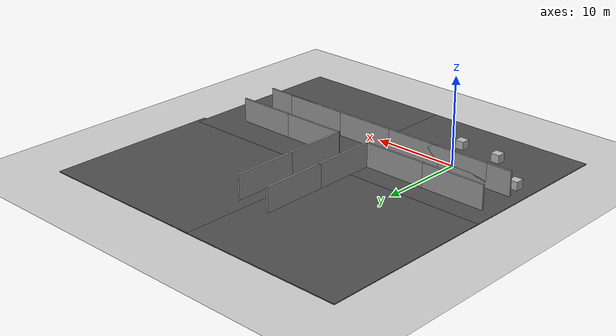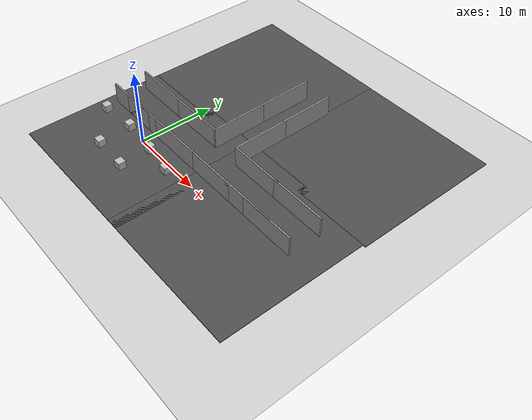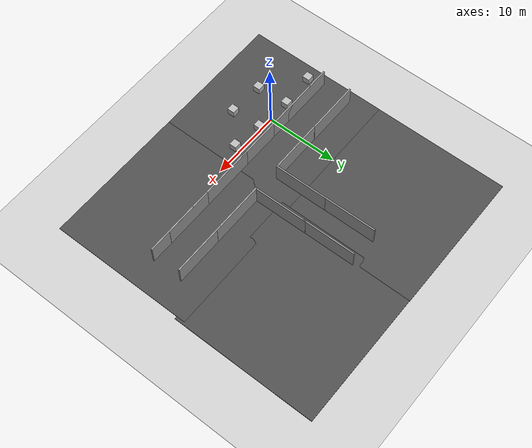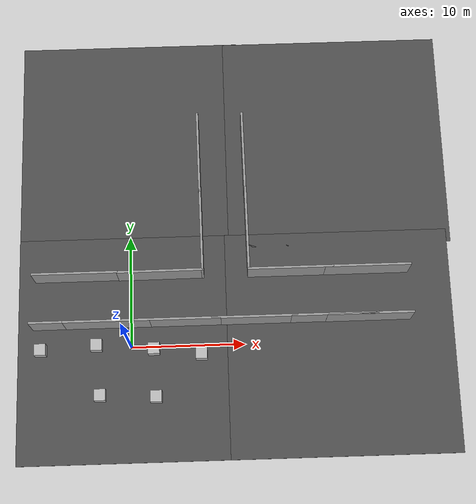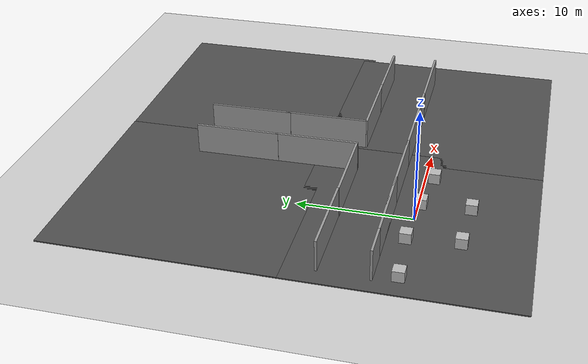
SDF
<sdf version="1.7">
 <world name="default">
  <light name="sun" type="directional">
   <pose>0 0 10 0 -0 0</pose>
   <diffuse>0.8 0.8 0.8 1</diffuse>
   <specular>0.2 0.2 0.2 1</specular>
   <attenuation>
    <range>1000</range>
    <constant>0.9</constant>
    <linear>0.01</linear>
    <quadratic>0.001</quadratic>
   </attenuation>
   <direction>-0.5 0.1 -0.9</direction>
   <spot><inner_angle>0</inner_angle><outer_angle>0</outer_angle><falloff>0</falloff></spot>
  </light>
  <model name="ground_plane">
   <static>1</static>
   <link name="link">
    <collision name="collision">
     <geometry><plane><normal>0 0 1</normal><size>100 100</size></plane></geometry>
     <surface>
      <contact><collide_bitmask>65535</collide_bitmask></contact>
      <friction><ode><mu>100</mu><mu2>50</mu2></ode></friction>
     </surface>
    </collision>
    <visual name="visual">
     <cast_shadows>0</cast_shadows>
     <geometry><plane><normal>0 0 1</normal><size>100 100</size></plane></geometry>
     <material>
      <script><uri>file://media/materials/scripts/gazebo.material</uri><name>Gazebo/Grey</name></script>
     </material>
    </visual>
   </link>
  </model>
  <gravity>0 0 -9.8</gravity>
  <magnetic_field>6e-06 2.3e-05 -4.2e-05</magnetic_field>
  <atmosphere type="adiabatic"/>
  <physics name="default_physics" default="0" type="ode">
   <max_step_size>0.001</max_step_size>
   <real_time_factor>1</real_time_factor>
   <real_time_update_rate>1000</real_time_update_rate>
  </physics>
  <scene><ambient>0.4 0.4 0.4 1</ambient><background>0.7 0.7 0.7 1</background><shadows>1</shadows></scene>
  <audio><device>default</device></audio>
  <spherical_coordinates>
   <surface_model>EARTH_WGS84</surface_model>
   <latitude_deg>0</latitude_deg>
   <longitude_deg>0</longitude_deg>
   <elevation>0</elevation>
   <heading_deg>0</heading_deg>
  </spherical_coordinates>
  <model name="asphalt_plane">
   <static>1</static>
   <link name="link">
    <collision name="collision">
     <geometry><box><size>20 20 0.1</size></box></geometry>
     <surface><friction><ode><mu>100</mu><mu2>50</mu2></ode></friction></surface>
    </collision>
    <visual name="visual">
     <cast_shadows>0</cast_shadows>
     <geometry><box><size>20 20 0.1</size></box></geometry>
     <material>
      <script>
       <uri>model://asphalt_plane/materials/scripts</uri>
       <uri>model://asphalt_plane/materials/textures</uri>
       <name>vrc/asphalt</name>
      </script>
     </material>
    </visual>
   </link>
   <pose>0.045823 0.016858 0 0 -0 0</pose>
  </model>
  <model name="box">
   <pose>2.14339 -4.43292 0.5 0 -0 0</pose>
   <static>1</static>
   <link name="link">
    <inertial>
     <mass>1</mass>
     <inertia><ixx>0.083</ixx><ixy>0</ixy><ixz>0</ixz><iyy>0.083</iyy><iyz>0</iyz><izz>0.083</izz></inertia>
    </inertial>
    <collision name="collision"><geometry><box><size>1 1 1</size></box></geometry></collision>
    <visual name="visual"><geometry><box><size>1 1 1</size></box></geometry></visual>
   </link>
  </model>
  <model name="box_0">
   <pose>-2.72122 -4.18171 0.5 0 -0 0</pose>
   <static>1</static>
   <link name="link">
    <inertial>
     <mass>1</mass>
     <inertia><ixx>0.083</ixx><ixy>0</ixy><ixz>0</ixz><iyy>0.083</iyy><iyz>0</iyz><izz>0.083</izz></inertia>
    </inertial>
    <collision name="collision"><geometry><box><size>1 1 1</size></box></geometry></collision>
    <visual name="visual"><geometry><box><size>1 1 1</size></box></geometry></visual>
   </link>
  </model>
  <model name="box_1">
   <pose>6.13827 -0.794097 0.5 0 -0 0</pose>
   <static>1</static>
   <link name="link">
    <inertial>
     <mass>1</mass>
     <inertia><ixx>0.083</ixx><ixy>0</ixy><ixz>0</ixz><iyy>0.083</iyy><iyz>0</iyz><izz>0.083</izz></inertia>
    </inertial>
    <collision name="collision"><geometry><box><size>1 1 1</size></box></geometry></collision>
    <visual name="visual"><geometry><box><size>1 1 1</size></box></geometry></visual>
   </link>
  </model>
  <model name="box_2">
   <pose>1.9889 -0.241692 0.5 0 -0 0</pose>
   <static>1</static>
   <link name="link">
    <inertial>
     <mass>1</mass>
     <inertia><ixx>0.083</ixx><ixy>0</ixy><ixz>0</ixz><iyy>0.083</iyy><iyz>0</iyz><izz>0.083</izz></inertia>
    </inertial>
    <collision name="collision"><geometry><box><size>1 1 1</size></box></geometry></collision>
    <visual name="visual"><geometry><box><size>1 1 1</size></box></geometry></visual>
   </link>
  </model>
  <model name="box_3">
   <pose>-3.03933 0.211312 0.5 0 -0 0</pose>
   <static>1</static>
   <link name="link">
    <inertial>
     <mass>1</mass>
     <inertia><ixx>0.083</ixx><ixy>0</ixy><ixz>0</ixz><iyy>0.083</iyy><iyz>0</iyz><izz>0.083</izz></inertia>
    </inertial>
    <collision name="collision"><geometry><box><size>1 1 1</size></box></geometry></collision>
    <visual name="visual"><geometry><box><size>1 1 1</size></box></geometry></visual>
   </link>
  </model>
  <model name="box_4">
   <pose>-7.91142 -0.08727 0.5 0 -0 0</pose>
   <static>1</static>
   <link name="link">
    <inertial>
     <mass>1</mass>
     <inertia><ixx>0.083</ixx><ixy>0</ixy><ixz>0</ixz><iyy>0.083</iyy><iyz>0</iyz><izz>0.083</izz></inertia>
    </inertial>
    <collision name="collision"><geometry><box><size>1 1 1</size></box></geometry></collision>
    <visual name="visual"><geometry><box><size>1 1 1</size></box></geometry></visual>
   </link>
  </model>
  <model name="grey_wall_1">
   <static>1</static>
   <link name="link">
    <pose>0 0 1.4 0 -0 0</pose>
    <collision name="collision"><geometry><box><size>7.5 0.2 2.8</size></box></geometry></collision>
    <visual name="visual">
     <cast_shadows>0</cast_shadows>
     <geometry><box><size>7.5 0.2 2.8</size></box></geometry>
     <material>
      <script>
       <uri>model://grey_wall/materials/scripts</uri>
       <uri>model://grey_wall/materials/textures</uri>
       <name>vrc/grey_wall</name>
      </script>
     </material>
    </visual>
   </link>
   <pose>-4.74019 6.21067 0 0 -0 0</pose>
  </model>
  <model name="grey_wall_2">
   <static>1</static>
   <link name="link">
    <pose>0 0 1.4 0 -0 0</pose>
    <collision name="collision"><geometry><box><size>7.5 0.2 2.8</size></box></geometry></collision>
    <visual name="visual">
     <cast_shadows>0</cast_shadows>
     <geometry><box><size>7.5 0.2 2.8</size></box></geometry>
     <material>
      <script>
       <uri>model://grey_wall/materials/scripts</uri>
       <uri>model://grey_wall/materials/textures</uri>
       <name>vrc/grey_wall</name>
      </script>
     </material>
    </visual>
   </link>
   <pose>2.68858 6.19685 0 0 -0 0.005613</pose>
  </model>
  <model name="asphalt_plane_clone">
   <static>1</static>
   <link name="link">
    <collision name="collision">
     <geometry><box><size>20 20 0.1</size></box></geometry>
     <surface><friction><ode><mu>100</mu><mu2>50</mu2></ode></friction></surface>
    </collision>
    <visual name="visual">
     <cast_shadows>0</cast_shadows>
     <geometry><box><size>20 20 0.1</size></box></geometry>
     <material>
      <script>
       <uri>model://asphalt_plane/materials/scripts</uri>
       <uri>model://asphalt_plane/materials/textures</uri>
       <name>vrc/asphalt</name>
      </script>
     </material>
    </visual>
   </link>
   <pose>18.4151 0.014709 0 0 -0 0</pose>
  </model>
  <model name="asphalt_plane_clone_clone">
   <static>1</static>
   <link name="link">
    <collision name="collision">
     <geometry><box><size>20 20 0.1</size></box></geometry>
     <surface><friction><ode><mu>100</mu><mu2>50</mu2></ode></friction></surface>
    </collision>
    <visual name="visual">
     <cast_shadows>0</cast_shadows>
     <geometry><box><size>20 20 0.1</size></box></geometry>
     <material>
      <script>
       <uri>model://asphalt_plane/materials/scripts</uri>
       <uri>model://asphalt_plane/materials/textures</uri>
       <name>vrc/asphalt</name>
      </script>
     </material>
    </visual>
   </link>
   <pose>0.062677 18.8771 0 0 -0 0</pose>
  </model>
  <model name="asphalt_plane_clone_clone_clone">
   <static>1</static>
   <link name="link">
    <collision name="collision">
     <geometry><box><size>20 20 0.1</size></box></geometry>
     <surface><friction><ode><mu>100</mu><mu2>50</mu2></ode></friction></surface>
    </collision>
    <visual name="visual">
     <cast_shadows>0</cast_shadows>
     <geometry><box><size>20 20 0.1</size></box></geometry>
     <material>
      <script>
       <uri>model://asphalt_plane/materials/scripts</uri>
       <uri>model://asphalt_plane/materials/textures</uri>
       <name>vrc/asphalt</name>
      </script>
     </material>
    </visual>
   </link>
   <pose>18.7738 18.8451 0 0 -0 0</pose>
  </model>
  <model name="grey_wall_2_clone_clone">
   <static>1</static>
   <link name="link">
    <pose>0 0 1.4 0 -0 0</pose>
    <collision name="collision"><geometry><box><size>7.5 0.2 2.8</size></box></geometry></collision>
    <visual name="visual">
     <cast_shadows>0</cast_shadows>
     <geometry><box><size>7.5 0.2 2.8</size></box></geometry>
     <material>
      <script>
       <uri>model://grey_wall/materials/scripts</uri>
       <uri>model://grey_wall/materials/textures</uri>
       <name>vrc/grey_wall</name>
      </script>
     </material>
    </visual>
   </link>
   <pose>6.38758 9.85397 0 0 -0 1.58002</pose>
  </model>
  <model name="grey_wall_clone_0">
   <static>1</static>
   <link name="link">
    <pose>0 0 1.4 0 -0 0</pose>
    <collision name="collision"><geometry><box><size>7.5 0.2 2.8</size></box></geometry></collision>
    <visual name="visual">
     <cast_shadows>0</cast_shadows>
     <geometry><box><size>7.5 0.2 2.8</size></box></geometry>
     <material>
      <script>
       <uri>model://grey_wall/materials/scripts</uri>
       <uri>model://grey_wall/materials/textures</uri>
       <name>vrc/grey_wall</name>
      </script>
     </material>
    </visual>
   </link>
   <pose>4.16249 1.90351 0 0 -0 0</pose>
  </model>
  <model name="grey_wall_clone_0_clone">
   <static>1</static>
   <link name="link">
    <pose>0 0 1.4 0 -0 0</pose>
    <collision name="collision"><geometry><box><size>7.5 0.2 2.8</size></box></geometry></collision>
    <visual name="visual">
     <cast_shadows>0</cast_shadows>
     <geometry><box><size>7.5 0.2 2.8</size></box></geometry>
     <material>
      <script>
       <uri>model://grey_wall/materials/scripts</uri>
       <uri>model://grey_wall/materials/textures</uri>
       <name>vrc/grey_wall</name>
      </script>
     </material>
    </visual>
   </link>
   <pose>-1.97729 1.90351 0 0 -0 0</pose>
  </model>
  <model name="grey_wall_clone_0_clone_clone">
   <static>1</static>
   <link name="link">
    <pose>0 0 1.4 0 -0 0</pose>
    <collision name="collision"><geometry><box><size>7.5 0.2 2.8</size></box></geometry></collision>
    <visual name="visual">
     <cast_shadows>0</cast_shadows>
     <geometry><box><size>7.5 0.2 2.8</size></box></geometry>
     <material>
      <script>
       <uri>model://grey_wall/materials/scripts</uri>
       <uri>model://grey_wall/materials/textures</uri>
       <name>vrc/grey_wall</name>
      </script>
     </material>
    </visual>
   </link>
   <pose>-4.90076 1.90351 0 0 -0 0</pose>
  </model>
  <model name="grey_wall_clone_0_clone_0">
   <static>1</static>
   <link name="link">
    <pose>0 0 1.4 0 -0 0</pose>
    <collision name="collision"><geometry><box><size>7.5 0.2 2.8</size></box></geometry></collision>
    <visual name="visual">
     <cast_shadows>0</cast_shadows>
     <geometry><box><size>7.5 0.2 2.8</size></box></geometry>
     <material>
      <script>
       <uri>model://grey_wall/materials/scripts</uri>
       <uri>model://grey_wall/materials/textures</uri>
       <name>vrc/grey_wall</name>
      </script>
     </material>
    </visual>
   </link>
   <pose>10.8317 1.90372 0 0 -0 0</pose>
  </model>
  <model name="grey_wall_clone_0_clone_0_clone">
   <static>1</static>
   <link name="link">
    <pose>0 0 1.4 0 -0 0</pose>
    <collision name="collision"><geometry><box><size>7.5 0.2 2.8</size></box></geometry></collision>
    <visual name="visual">
     <cast_shadows>0</cast_shadows>
     <geometry><box><size>7.5 0.2 2.8</size></box></geometry>
     <material>
      <script>
       <uri>model://grey_wall/materials/scripts</uri>
       <uri>model://grey_wall/materials/textures</uri>
       <name>vrc/grey_wall</name>
      </script>
     </material>
    </visual>
   </link>
   <pose>17.7757 1.90372 0 0 -0 0</pose>
  </model>
  <model name="grey_wall_2_clone_clone_clone_0">
   <static>1</static>
   <link name="link">
    <pose>0 0 1.4 0 -0 0</pose>
    <collision name="collision"><geometry><box><size>7.5 0.2 2.8</size></box></geometry></collision>
    <visual name="visual">
     <cast_shadows>0</cast_shadows>
     <geometry><box><size>7.5 0.2 2.8</size></box></geometry>
     <material>
      <script>
       <uri>model://grey_wall/materials/scripts</uri>
       <uri>model://grey_wall/materials/textures</uri>
       <name>vrc/grey_wall</name>
      </script>
     </material>
    </visual>
   </link>
   <pose>10.4351 9.94427 0 0 -0 1.58002</pose>
  </model>
  <model name="grey_wall_2_clone_clone_clone_0_clone">
   <static>1</static>
   <link name="link">
    <pose>0 0 1.4 0 -0 0</pose>
    <collision name="collision"><geometry><box><size>7.5 0.2 2.8</size></box></geometry></collision>
    <visual name="visual">
     <cast_shadows>0</cast_shadows>
     <geometry><box><size>7.5 0.2 2.8</size></box></geometry>
     <material>
      <script>
       <uri>model://grey_wall/materials/scripts</uri>
       <uri>model://grey_wall/materials/textures</uri>
       <name>vrc/grey_wall</name>
      </script>
     </material>
    </visual>
   </link>
   <pose>10.3537 17.0523 0 0 -0 1.58002</pose>
  </model>
  <model name="grey_wall_clone_0_clone_0_clone_0">
   <static>1</static>
   <link name="link">
    <pose>0 0 1.4 0 -0 0</pose>
    <collision name="collision"><geometry><box><size>7.5 0.2 2.8</size></box></geometry></collision>
    <visual name="visual">
     <cast_shadows>0</cast_shadows>
     <geometry><box><size>7.5 0.2 2.8</size></box></geometry>
     <material>
      <script>
       <uri>model://grey_wall/materials/scripts</uri>
       <uri>model://grey_wall/materials/textures</uri>
       <name>vrc/grey_wall</name>
      </script>
     </material>
    </visual>
   </link>
   <pose>14.133 6.16403 0 0 -0 0</pose>
  </model>
  <model name="grey_wall_clone_0_clone_0_clone_clone">
   <static>1</static>
   <link name="link">
    <pose>0 0 1.4 0 -0 0</pose>
    <collision name="collision"><geometry><box><size>7.5 0.2 2.8</size></box></geometry></collision>
    <visual name="visual">
     <cast_shadows>0</cast_shadows>
     <geometry><box><size>7.5 0.2 2.8</size></box></geometry>
     <material>
      <script>
       <uri>model://grey_wall/materials/scripts</uri>
       <uri>model://grey_wall/materials/textures</uri>
       <name>vrc/grey_wall</name>
      </script>
     </material>
    </visual>
   </link>
   <pose>20.9101 6.16299 0 0 -0 0</pose>
  </model>
  <model name="grey_wall_clone_0_clone_0_clone_clone_0">
   <static>1</static>
   <link name="link">
    <pose>0 0 1.4 0 -0 0</pose>
    <collision name="collision"><geometry><box><size>7.5 0.2 2.8</size></box></geometry></collision>
    <visual name="visual">
     <cast_shadows>0</cast_shadows>
     <geometry><box><size>7.5 0.2 2.8</size></box></geometry>
     <material>
      <script>
       <uri>model://grey_wall/materials/scripts</uri>
       <uri>model://grey_wall/materials/textures</uri>
       <name>vrc/grey_wall</name>
      </script>
     </material>
    </visual>
   </link>
   <pose>20.8699 1.88985 0 0 -0 0</pose>
  </model>
  <model name="grey_wall_2_clone_clone_clone">
   <static>1</static>
   <link name="link">
    <pose>0 0 1.4 0 -0 0</pose>
    <collision name="collision"><geometry><box><size>7.5 0.2 2.8</size></box></geometry></collision>
    <visual name="visual">
     <cast_shadows>0</cast_shadows>
     <geometry><box><size>7.5 0.2 2.8</size></box></geometry>
     <material>
      <script>
       <uri>model://grey_wall/materials/scripts</uri>
       <uri>model://grey_wall/materials/textures</uri>
       <name>vrc/grey_wall</name>
      </script>
     </material>
    </visual>
   </link>
   <pose>6.30701 17.107 0 0 -0 1.58002</pose>
  </model>
 </world>
</sdf>
